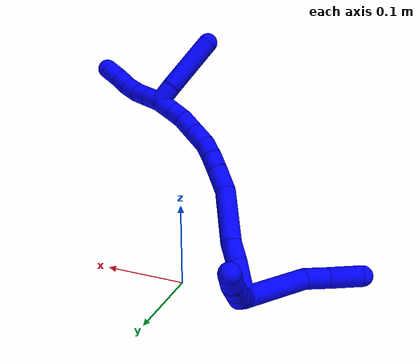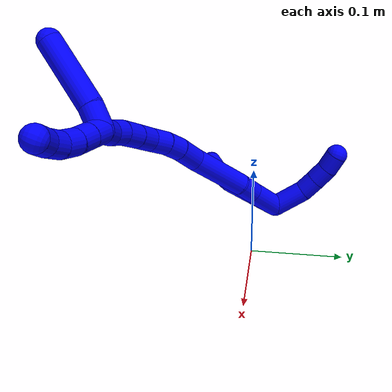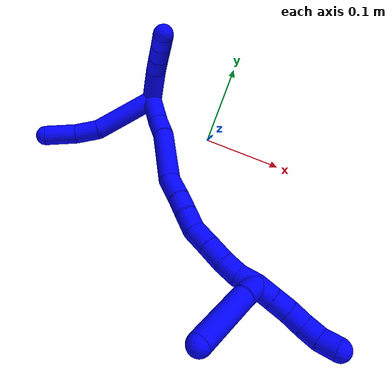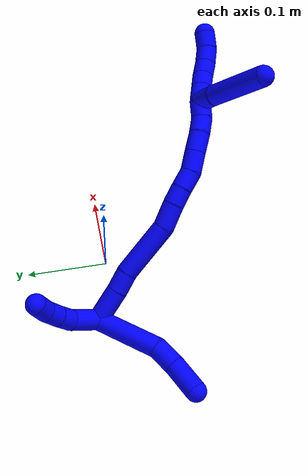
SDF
<sdf version="1.7">
 <world name="default">
  <plugin name="TubeGeneratorPlugin" filename="libtube_generator_plugin.so"/>
  <model name="photoneo_s_sensor">
   <static>1</static>
   <pose>0 0 2 1.57079 1.57079 3.14159</pose>
   <link name="link">
    <inertial><mass>0.1</mass></inertial>
    <sensor name="sensor" type="depth">
     <update_rate>30</update_rate>
     <camera>
      <horizontal_fov>1.22</horizontal_fov>
      <image><width>1920</width><height>1200</height><format>B8G8R8</format></image>
      <clip><near>0.1</near><far>4</far></clip>
      <depth_camera><output>points</output></depth_camera>
     </camera>
     <plugin name="camera_plugin" filename="libgazebo_ros_depth_camera.so">
      <baseline>0.2</baseline>
      <alwaysOn>1</alwaysOn>
      <updateRate>0.0</updateRate>
      <cameraName>camera_ir</cameraName>
      <imageTopicName>/camera/color/image_raw</imageTopicName>
      <cameraInfoTopicName>/camera/color/camera_info</cameraInfoTopicName>
      <depthImageTopicName>/camera/depth/image_raw</depthImageTopicName>
      <depthImageCameraInfoTopicName>/camera/depth/camera_info</depthImageCameraInfoTopicName>
      <pointCloudTopicName>/camera/depth/points</pointCloudTopicName>
      <frameName>fr_optical</frameName>
      <pointCloudCutoff>0.1</pointCloudCutoff>
      <pointCloudCutoffMax>2.0</pointCloudCutoffMax>
      <distortionK1>0</distortionK1>
      <distortionK2>0</distortionK2>
      <distortionK3>0</distortionK3>
      <distortionT1>0</distortionT1>
      <distortionT2>0</distortionT2>
      <CxPrime>0</CxPrime>
      <Cx>0</Cx>
      <Cy>0</Cy>
      <focalLength>0</focalLength>
      <hackBaseline>0</hackBaseline>
     </plugin>
    </sensor>
   </link>
  </model>
  <gravity>0 0 -9.8</gravity>
  <magnetic_field>6e-06 2.3e-05 -4.2e-05</magnetic_field>
  <atmosphere type="adiabatic"/>
  <physics name="default_physics" default="0" type="ode">
   <max_step_size>0.003</max_step_size>
   <real_time_factor>1</real_time_factor>
   <real_time_update_rate>1000</real_time_update_rate>
   <max_contacts>10000</max_contacts>
   <ode>
    <solver>
     <type>quick</type>
     <iters>100</iters>
     <sor>1.3</sor>
     <use_dynamic_moi_rescaling>0</use_dynamic_moi_rescaling>
    </solver>
    <constraints>
     <contact_max_correcting_vel>0</contact_max_correcting_vel>
     <contact_surface_layer>0.001</contact_surface_layer>
     <cfm>0</cfm>
     <erp>0.2</erp>
    </constraints>
   </ode>
  </physics>
  <scene><ambient>0.4 0.4 0.4 1</ambient><background>0.7 0.7 0.7 1</background><shadows>0</shadows></scene>
  <audio><device>default</device></audio>
  <spherical_coordinates>
   <surface_model>EARTH_WGS84</surface_model>
   <latitude_deg>0</latitude_deg>
   <longitude_deg>0</longitude_deg>
   <elevation>0</elevation>
   <heading_deg>0</heading_deg>
  </spherical_coordinates>
  <model name="bin">
   <static>1</static>
   <link name="bottom">
    <collision name="collision-bottom">
     <pose>0 0 -0.01 0 -0 0</pose>
     <geometry><box><size>0.8 0.6 0.02</size></box></geometry>
     <surface>
      <friction><ode><mu>100</mu><mu2>100</mu2></ode></friction>
      <contact><collide_bitmask>65535</collide_bitmask></contact>
     </surface>
    </collision>
   </link>
   <link name="west_wall">
    <collision name="collision-west_wall">
     <pose>-0.41 0 0.1 0 -0 0</pose>
     <geometry><box><size>0.02 0.6 0.2</size></box></geometry>
     <surface>
      <friction><ode><mu>100</mu><mu2>100</mu2></ode></friction>
      <contact><collide_bitmask>65535</collide_bitmask></contact>
     </surface>
    </collision>
   </link>
   <link name="east_wall">
    <collision name="collision-east_wall">
     <pose>0.41 0 0.1 0 -0 0</pose>
     <geometry><box><size>0.02 0.6 0.2</size></box></geometry>
     <surface>
      <friction><ode><mu>100</mu><mu2>100</mu2></ode></friction>
      <contact><collide_bitmask>65535</collide_bitmask></contact>
     </surface>
    </collision>
   </link>
   <link name="south_wall">
    <collision name="collision-south_wall">
     <pose>0 -0.31 0.1 0 -0 0</pose>
     <geometry><box><size>0.8 0.02 0.2</size></box></geometry>
     <surface>
      <friction><ode><mu>100</mu><mu2>100</mu2></ode></friction>
      <contact><collide_bitmask>65535</collide_bitmask></contact>
     </surface>
    </collision>
   </link>
   <link name="north_wall">
    <collision name="collision-north_wall">
     <pose>0 0.31 0.1 0 -0 0</pose>
     <geometry><box><size>0.8 0.02 0.2</size></box></geometry>
     <surface>
      <friction><ode><mu>100</mu><mu2>100</mu2></ode></friction>
      <contact><collide_bitmask>65535</collide_bitmask></contact>
     </surface>
    </collision>
   </link>
  </model>
  <model name="1">
   <static>0</static>
   <link name="1">
    <collision name="collision-cylinder-e_1_2_8">
     <pose>-0.026284 0.010567 0.0286 -0.353906 -0.711454 0.132682</pose>
     <geometry><cylinder><radius>0.0125</radius><length>0.080511</length></cylinder></geometry>
     <surface>
      <friction><ode><mu>1.16</mu><mu2>1.16</mu2><slip1>0</slip1><slip2>0</slip2></ode></friction>
      <contact><ode><kp>1e+06</kp><kd>1</kd><max_vel>0</max_vel><min_depth>0.001</min_depth></ode></contact>
     </surface>
    </collision>
    <visual name="visual-cylinder-e_1_2_8">
     <pose>-0.026284 0.010567 0.0286 -0.353906 -0.711454 0.132682</pose>
     <geometry><cylinder><radius>0.0125</radius><length>0.080511</length></cylinder></geometry>
     <material><ambient>0 0 1 1</ambient></material>
    </visual>
    <collision name="collision-cylinder-e_2_8_9">
     <pose>-0.064417 0.027257 0.063798 -0.748114 -0.921133 0.384703</pose>
     <geometry><cylinder><radius>0.0125</radius><length>0.02976</length></cylinder></geometry>
     <surface>
      <friction><ode><mu>1.16</mu><mu2>1.16</mu2><slip1>0</slip1><slip2>0</slip2></ode></friction>
      <contact><ode><kp>1e+06</kp><kd>1</kd><max_vel>0</max_vel><min_depth>0.001</min_depth></ode></contact>
     </surface>
    </collision>
    <visual name="visual-cylinder-e_2_8_9">
     <pose>-0.064417 0.027257 0.063798 -0.748114 -0.921133 0.384703</pose>
     <geometry><cylinder><radius>0.0125</radius><length>0.02976</length></cylinder></geometry>
     <material><ambient>0 0 1 1</ambient></material>
    </visual>
    <collision name="collision-cylinder-e_3_9_6">
     <pose>-0.091171 0.044217 0.077812 -0.970643 -0.848575 0.467754</pose>
     <geometry><cylinder><radius>0.0125</radius><length>0.039729</length></cylinder></geometry>
     <surface>
      <friction><ode><mu>1.16</mu><mu2>1.16</mu2><slip1>0</slip1><slip2>0</slip2></ode></friction>
      <contact><ode><kp>1e+06</kp><kd>1</kd><max_vel>0</max_vel><min_depth>0.001</min_depth></ode></contact>
     </surface>
    </collision>
    <visual name="visual-cylinder-e_3_9_6">
     <pose>-0.091171 0.044217 0.077812 -0.970643 -0.848575 0.467754</pose>
     <geometry><cylinder><radius>0.0125</radius><length>0.039729</length></cylinder></geometry>
     <material><ambient>0 0 1 1</ambient></material>
    </visual>
    <collision name="collision-cylinder-e_1_2_10">
     <pose>0.008087 0.013142 -0.011725 -2.29927 0.430437 -0.907987</pose>
     <geometry><cylinder><radius>0.0125</radius><length>0.03876</length></cylinder></geometry>
     <surface>
      <friction><ode><mu>1.16</mu><mu2>1.16</mu2><slip1>0</slip1><slip2>0</slip2></ode></friction>
      <contact><ode><kp>1e+06</kp><kd>1</kd><max_vel>0</max_vel><min_depth>0.001</min_depth></ode></contact>
     </surface>
    </collision>
    <visual name="visual-cylinder-e_1_2_10">
     <pose>0.008087 0.013142 -0.011725 -2.29927 0.430437 -0.907987</pose>
     <geometry><cylinder><radius>0.0125</radius><length>0.03876</length></cylinder></geometry>
     <material><ambient>0 0 1 1</ambient></material>
    </visual>
    <collision name="collision-cylinder-e_2_10_11">
     <pose>0.022269 0.033759 -0.027151 -2.03049 0.631142 -0.968355</pose>
     <geometry><cylinder><radius>0.0125</radius><length>0.020662</length></cylinder></geometry>
     <surface>
      <friction><ode><mu>1.16</mu><mu2>1.16</mu2><slip1>0</slip1><slip2>0</slip2></ode></friction>
      <contact><ode><kp>1e+06</kp><kd>1</kd><max_vel>0</max_vel><min_depth>0.001</min_depth></ode></contact>
     </surface>
    </collision>
    <visual name="visual-cylinder-e_2_10_11">
     <pose>0.022269 0.033759 -0.027151 -2.03049 0.631142 -0.968355</pose>
     <geometry><cylinder><radius>0.0125</radius><length>0.020662</length></cylinder></geometry>
     <material><ambient>0 0 1 1</ambient></material>
    </visual>
    <collision name="collision-cylinder-e_3_11_12">
     <pose>0.034587 0.048455 -0.03395 -1.97617 0.669689 -0.971515</pose>
     <geometry><cylinder><radius>0.0125</radius><length>0.020045</length></cylinder></geometry>
     <surface>
      <friction><ode><mu>1.16</mu><mu2>1.16</mu2><slip1>0</slip1><slip2>0</slip2></ode></friction>
      <contact><ode><kp>1e+06</kp><kd>1</kd><max_vel>0</max_vel><min_depth>0.001</min_depth></ode></contact>
     </surface>
    </collision>
    <visual name="visual-cylinder-e_3_11_12">
     <pose>0.034587 0.048455 -0.03395 -1.97617 0.669689 -0.971515</pose>
     <geometry><cylinder><radius>0.0125</radius><length>0.020045</length></cylinder></geometry>
     <material><ambient>0 0 1 1</ambient></material>
    </visual>
    <collision name="collision-cylinder-e_4_12_5">
     <pose>0.047532 0.063355 -0.038153 -1.71361 0.714139 -0.813106</pose>
     <geometry><cylinder><radius>0.0125</radius><length>0.020533</length></cylinder></geometry>
     <surface>
      <friction><ode><mu>1.16</mu><mu2>1.16</mu2><slip1>0</slip1><slip2>0</slip2></ode></friction>
      <contact><ode><kp>1e+06</kp><kd>1</kd><max_vel>0</max_vel><min_depth>0.001</min_depth></ode></contact>
     </surface>
    </collision>
    <visual name="visual-cylinder-e_4_12_5">
     <pose>0.047532 0.063355 -0.038153 -1.71361 0.714139 -0.813106</pose>
     <geometry><cylinder><radius>0.0125</radius><length>0.020533</length></cylinder></geometry>
     <material><ambient>0 0 1 1</ambient></material>
    </visual>
    <collision name="collision-cylinder-e_1_2_13">
     <pose>0.012142 -0.000784 0.017836 0.043911 0.597242 0.013519</pose>
     <geometry><cylinder><radius>0.0125</radius><length>0.043181</length></cylinder></geometry>
     <surface>
      <friction><ode><mu>1.16</mu><mu2>1.16</mu2><slip1>0</slip1><slip2>0</slip2></ode></friction>
      <contact><ode><kp>1e+06</kp><kd>1</kd><max_vel>0</max_vel><min_depth>0.001</min_depth></ode></contact>
     </surface>
    </collision>
    <visual name="visual-cylinder-e_1_2_13">
     <pose>0.012142 -0.000784 0.017836 0.043911 0.597242 0.013519</pose>
     <geometry><cylinder><radius>0.0125</radius><length>0.043181</length></cylinder></geometry>
     <material><ambient>0 0 1 1</ambient></material>
    </visual>
    <collision name="collision-cylinder-e_2_13_14">
     <pose>0.032023 -0.002091 0.045322 0.054194 0.675235 0.019029</pose>
     <geometry><cylinder><radius>0.0125</radius><length>0.024762</length></cylinder></geometry>
     <surface>
      <friction><ode><mu>1.16</mu><mu2>1.16</mu2><slip1>0</slip1><slip2>0</slip2></ode></friction>
      <contact><ode><kp>1e+06</kp><kd>1</kd><max_vel>0</max_vel><min_depth>0.001</min_depth></ode></contact>
     </surface>
    </collision>
    <visual name="visual-cylinder-e_2_13_14">
     <pose>0.032023 -0.002091 0.045322 0.054194 0.675235 0.019029</pose>
     <geometry><cylinder><radius>0.0125</radius><length>0.024762</length></cylinder></geometry>
     <material><ambient>0 0 1 1</ambient></material>
    </visual>
    <collision name="collision-cylinder-e_3_14_15">
     <pose>0.056052 -0.003645 0.085556 0.033701 0.489176 0.008412</pose>
     <geometry><cylinder><radius>0.0125</radius><length>0.069335</length></cylinder></geometry>
     <surface>
      <friction><ode><mu>1.16</mu><mu2>1.16</mu2><slip1>0</slip1><slip2>0</slip2></ode></friction>
      <contact><ode><kp>1e+06</kp><kd>1</kd><max_vel>0</max_vel><min_depth>0.001</min_depth></ode></contact>
     </surface>
    </collision>
    <visual name="visual-cylinder-e_3_14_15">
     <pose>0.056052 -0.003645 0.085556 0.033701 0.489176 0.008412</pose>
     <geometry><cylinder><radius>0.0125</radius><length>0.069335</length></cylinder></geometry>
     <material><ambient>0 0 1 1</ambient></material>
    </visual>
    <collision name="collision-cylinder-e_4_15_16">
     <pose>0.082667 -0.00563 0.126854 0.08877 0.76493 0.03573</pose>
     <geometry><cylinder><radius>0.0125</radius><length>0.02982</length></cylinder></geometry>
     <surface>
      <friction><ode><mu>1.16</mu><mu2>1.16</mu2><slip1>0</slip1><slip2>0</slip2></ode></friction>
      <contact><ode><kp>1e+06</kp><kd>1</kd><max_vel>0</max_vel><min_depth>0.001</min_depth></ode></contact>
     </surface>
    </collision>
    <visual name="visual-cylinder-e_4_15_16">
     <pose>0.082667 -0.00563 0.126854 0.08877 0.76493 0.03573</pose>
     <geometry><cylinder><radius>0.0125</radius><length>0.02982</length></cylinder></geometry>
     <material><ambient>0 0 1 1</ambient></material>
    </visual>
    <collision name="collision-cylinder-e_5_16_17">
     <pose>0.099515 -0.008338 0.145347 0.221827 0.685602 0.079453</pose>
     <geometry><cylinder><radius>0.0125</radius><length>0.020604</length></cylinder></geometry>
     <surface>
      <friction><ode><mu>1.16</mu><mu2>1.16</mu2><slip1>0</slip1><slip2>0</slip2></ode></friction>
      <contact><ode><kp>1e+06</kp><kd>1</kd><max_vel>0</max_vel><min_depth>0.001</min_depth></ode></contact>
     </surface>
    </collision>
    <visual name="visual-cylinder-e_5_16_17">
     <pose>0.099515 -0.008338 0.145347 0.221827 0.685602 0.079453</pose>
     <geometry><cylinder><radius>0.0125</radius><length>0.020604</length></cylinder></geometry>
     <material><ambient>0 0 1 1</ambient></material>
    </visual>
    <collision name="collision-cylinder-e_6_17_18">
     <pose>0.112524 -0.013427 0.16151 0.37852 0.623304 0.123261</pose>
     <geometry><cylinder><radius>0.0125</radius><length>0.022226</length></cylinder></geometry>
     <surface>
      <friction><ode><mu>1.16</mu><mu2>1.16</mu2><slip1>0</slip1><slip2>0</slip2></ode></friction>
      <contact><ode><kp>1e+06</kp><kd>1</kd><max_vel>0</max_vel><min_depth>0.001</min_depth></ode></contact>
     </surface>
    </collision>
    <visual name="visual-cylinder-e_6_17_18">
     <pose>0.112524 -0.013427 0.16151 0.37852 0.623304 0.123261</pose>
     <geometry><cylinder><radius>0.0125</radius><length>0.022226</length></cylinder></geometry>
     <material><ambient>0 0 1 1</ambient></material>
    </visual>
    <collision name="collision-cylinder-e_7_18_19">
     <pose>0.12864 -0.020579 0.176475 0.525689 0.902154 0.259205</pose>
     <geometry><cylinder><radius>0.0125</radius><length>0.024544</length></cylinder></geometry>
     <surface>
      <friction><ode><mu>1.16</mu><mu2>1.16</mu2><slip1>0</slip1><slip2>0</slip2></ode></friction>
      <contact><ode><kp>1e+06</kp><kd>1</kd><max_vel>0</max_vel><min_depth>0.001</min_depth></ode></contact>
     </surface>
    </collision>
    <visual name="visual-cylinder-e_7_18_19">
     <pose>0.12864 -0.020579 0.176475 0.525689 0.902154 0.259205</pose>
     <geometry><cylinder><radius>0.0125</radius><length>0.024544</length></cylinder></geometry>
     <material><ambient>0 0 1 1</ambient></material>
    </visual>
    <collision name="collision-cylinder-e_8_19_20">
     <pose>0.147549 -0.028271 0.189693 0.52833 0.879106 0.253025</pose>
     <geometry><cylinder><radius>0.0125</radius><length>0.024099</length></cylinder></geometry>
     <surface>
      <friction><ode><mu>1.16</mu><mu2>1.16</mu2><slip1>0</slip1><slip2>0</slip2></ode></friction>
      <contact><ode><kp>1e+06</kp><kd>1</kd><max_vel>0</max_vel><min_depth>0.001</min_depth></ode></contact>
     </surface>
    </collision>
    <visual name="visual-cylinder-e_8_19_20">
     <pose>0.147549 -0.028271 0.189693 0.52833 0.879106 0.253025</pose>
     <geometry><cylinder><radius>0.0125</radius><length>0.024099</length></cylinder></geometry>
     <material><ambient>0 0 1 1</ambient></material>
    </visual>
    <collision name="collision-cylinder-e_9_20_21">
     <pose>0.164598 -0.036762 0.20089 0.791713 0.874938 0.386046</pose>
     <geometry><cylinder><radius>0.0125</radius><length>0.020244</length></cylinder></geometry>
     <surface>
      <friction><ode><mu>1.16</mu><mu2>1.16</mu2><slip1>0</slip1><slip2>0</slip2></ode></friction>
      <contact><ode><kp>1e+06</kp><kd>1</kd><max_vel>0</max_vel><min_depth>0.001</min_depth></ode></contact>
     </surface>
    </collision>
    <visual name="visual-cylinder-e_9_20_21">
     <pose>0.164598 -0.036762 0.20089 0.791713 0.874938 0.386046</pose>
     <geometry><cylinder><radius>0.0125</radius><length>0.020244</length></cylinder></geometry>
     <material><ambient>0 0 1 1</ambient></material>
    </visual>
    <collision name="collision-cylinder-e_10_21_1">
     <pose>0.182061 -0.044579 0.208274 0.847466 1.15598 0.572302</pose>
     <geometry><cylinder><radius>0.0125</radius><length>0.021186</length></cylinder></geometry>
     <surface>
      <friction><ode><mu>1.16</mu><mu2>1.16</mu2><slip1>0</slip1><slip2>0</slip2></ode></friction>
      <contact><ode><kp>1e+06</kp><kd>1</kd><max_vel>0</max_vel><min_depth>0.001</min_depth></ode></contact>
     </surface>
    </collision>
    <visual name="visual-cylinder-e_10_21_1">
     <pose>0.182061 -0.044579 0.208274 0.847466 1.15598 0.572302</pose>
     <geometry><cylinder><radius>0.0125</radius><length>0.021186</length></cylinder></geometry>
     <material><ambient>0 0 1 1</ambient></material>
    </visual>
    <collision name="collision-cylinder-e_1_1_22">
     <pose>0.198653 -0.054155 0.214534 1.07678 0.761013 0.469003</pose>
     <geometry><cylinder><radius>0.0125</radius><length>0.02</length></cylinder></geometry>
     <surface>
      <friction><ode><mu>1.16</mu><mu2>1.16</mu2><slip1>0</slip1><slip2>0</slip2></ode></friction>
      <contact><ode><kp>1e+06</kp><kd>1</kd><max_vel>0</max_vel><min_depth>0.001</min_depth></ode></contact>
     </surface>
    </collision>
    <visual name="visual-cylinder-e_1_1_22">
     <pose>0.198653 -0.054155 0.214534 1.07678 0.761013 0.469003</pose>
     <geometry><cylinder><radius>0.0125</radius><length>0.02</length></cylinder></geometry>
     <material><ambient>0 0 1 1</ambient></material>
    </visual>
    <collision name="collision-cylinder-e_2_22_23">
     <pose>0.21239 -0.066959 0.221415 1.0785 0.753355 0.464865</pose>
     <geometry><cylinder><radius>0.0125</radius><length>0.02</length></cylinder></geometry>
     <surface>
      <friction><ode><mu>1.16</mu><mu2>1.16</mu2><slip1>0</slip1><slip2>0</slip2></ode></friction>
      <contact><ode><kp>1e+06</kp><kd>1</kd><max_vel>0</max_vel><min_depth>0.001</min_depth></ode></contact>
     </surface>
    </collision>
    <visual name="visual-cylinder-e_2_22_23">
     <pose>0.21239 -0.066959 0.221415 1.0785 0.753355 0.464865</pose>
     <geometry><cylinder><radius>0.0125</radius><length>0.02</length></cylinder></geometry>
     <material><ambient>0 0 1 1</ambient></material>
    </visual>
    <collision name="collision-cylinder-e_3_23_24">
     <pose>0.22629 -0.078901 0.229308 0.892324 0.783733 0.390298</pose>
     <geometry><cylinder><radius>0.0125</radius><length>0.02</length></cylinder></geometry>
     <surface>
      <friction><ode><mu>1.16</mu><mu2>1.16</mu2><slip1>0</slip1><slip2>0</slip2></ode></friction>
      <contact><ode><kp>1e+06</kp><kd>1</kd><max_vel>0</max_vel><min_depth>0.001</min_depth></ode></contact>
     </surface>
    </collision>
    <visual name="visual-cylinder-e_3_23_24">
     <pose>0.22629 -0.078901 0.229308 0.892324 0.783733 0.390298</pose>
     <geometry><cylinder><radius>0.0125</radius><length>0.02</length></cylinder></geometry>
     <material><ambient>0 0 1 1</ambient></material>
    </visual>
    <collision name="collision-cylinder-e_4_24_25">
     <pose>0.24171 -0.087707 0.238143 0.643513 0.989945 0.356059</pose>
     <geometry><cylinder><radius>0.0125</radius><length>0.02</length></cylinder></geometry>
     <surface>
      <friction><ode><mu>1.16</mu><mu2>1.16</mu2><slip1>0</slip1><slip2>0</slip2></ode></friction>
      <contact><ode><kp>1e+06</kp><kd>1</kd><max_vel>0</max_vel><min_depth>0.001</min_depth></ode></contact>
     </surface>
    </collision>
    <visual name="visual-cylinder-e_4_24_25">
     <pose>0.24171 -0.087707 0.238143 0.643513 0.989945 0.356059</pose>
     <geometry><cylinder><radius>0.0125</radius><length>0.02</length></cylinder></geometry>
     <material><ambient>0 0 1 1</ambient></material>
    </visual>
    <collision name="collision-cylinder-e_5_25_4">
     <pose>0.259506 -0.093209 0.244998 0.730742 1.23336 0.529646</pose>
     <geometry><cylinder><radius>0.0125</radius><length>0.02</length></cylinder></geometry>
     <surface>
      <friction><ode><mu>1.16</mu><mu2>1.16</mu2><slip1>0</slip1><slip2>0</slip2></ode></friction>
      <contact><ode><kp>1e+06</kp><kd>1</kd><max_vel>0</max_vel><min_depth>0.001</min_depth></ode></contact>
     </surface>
    </collision>
    <visual name="visual-cylinder-e_5_25_4">
     <pose>0.259506 -0.093209 0.244998 0.730742 1.23336 0.529646</pose>
     <geometry><cylinder><radius>0.0125</radius><length>0.02</length></cylinder></geometry>
     <material><ambient>0 0 1 1</ambient></material>
    </visual>
    <collision name="collision-cylinder-e_1_1_26">
     <pose>0.191635 -0.038797 0.219997 -0.790152 -0.009568 0.00399</pose>
     <geometry><cylinder><radius>0.0125</radius><length>0.025287</length></cylinder></geometry>
     <surface>
      <friction><ode><mu>1.16</mu><mu2>1.16</mu2><slip1>0</slip1><slip2>0</slip2></ode></friction>
      <contact><ode><kp>1e+06</kp><kd>1</kd><max_vel>0</max_vel><min_depth>0.001</min_depth></ode></contact>
     </surface>
    </collision>
    <visual name="visual-cylinder-e_1_1_26">
     <pose>0.191635 -0.038797 0.219997 -0.790152 -0.009568 0.00399</pose>
     <geometry><cylinder><radius>0.0125</radius><length>0.025287</length></cylinder></geometry>
     <material><ambient>0 0 1 1</ambient></material>
    </visual>
    <collision name="collision-cylinder-e_2_26_3">
     <pose>0.189591 -0.007393 0.258712 -0.644765 -0.051497 0.017205</pose>
     <geometry><cylinder><radius>0.0125</radius><length>0.074713</length></cylinder></geometry>
     <surface>
      <friction><ode><mu>1.16</mu><mu2>1.16</mu2><slip1>0</slip1><slip2>0</slip2></ode></friction>
      <contact><ode><kp>1e+06</kp><kd>1</kd><max_vel>0</max_vel><min_depth>0.001</min_depth></ode></contact>
     </surface>
    </collision>
    <visual name="visual-cylinder-e_2_26_3">
     <pose>0.189591 -0.007393 0.258712 -0.644765 -0.051497 0.017205</pose>
     <geometry><cylinder><radius>0.0125</radius><length>0.074713</length></cylinder></geometry>
     <material><ambient>0 0 1 1</ambient></material>
    </visual>
    <collision name="collision-sphere-3">
     <pose>0.187668 0.015029 0.288529 0 -0 0</pose>
     <geometry><sphere><radius>0.0125</radius></sphere></geometry>
     <surface>
      <friction><ode><mu>1.16</mu><mu2>1.16</mu2><slip1>0</slip1><slip2>0</slip2></ode></friction>
      <contact><ode><kp>1e+06</kp><kd>1</kd><max_vel>0</max_vel><min_depth>0.001</min_depth></ode></contact>
     </surface>
    </collision>
    <visual name="visual-sphere-3">
     <pose>0.187668 0.015029 0.288529 0 -0 0</pose>
     <geometry><sphere><radius>0.0125</radius></sphere></geometry>
     <material><ambient>0 0 1 1</ambient></material>
    </visual>
    <collision name="collision-sphere-26">
     <pose>0.191514 -0.029815 0.228895 0 -0 0</pose>
     <geometry><sphere><radius>0.0125</radius></sphere></geometry>
     <surface>
      <friction><ode><mu>1.16</mu><mu2>1.16</mu2><slip1>0</slip1><slip2>0</slip2></ode></friction>
      <contact><ode><kp>1e+06</kp><kd>1</kd><max_vel>0</max_vel><min_depth>0.001</min_depth></ode></contact>
     </surface>
    </collision>
    <visual name="visual-sphere-26">
     <pose>0.191514 -0.029815 0.228895 0 -0 0</pose>
     <geometry><sphere><radius>0.0125</radius></sphere></geometry>
     <material><ambient>0 0 1 1</ambient></material>
    </visual>
    <collision name="collision-sphere-4">
     <pose>0.268942 -0.095419 0.247463 0 -0 0</pose>
     <geometry><sphere><radius>0.0125</radius></sphere></geometry>
     <surface>
      <friction><ode><mu>1.16</mu><mu2>1.16</mu2><slip1>0</slip1><slip2>0</slip2></ode></friction>
      <contact><ode><kp>1e+06</kp><kd>1</kd><max_vel>0</max_vel><min_depth>0.001</min_depth></ode></contact>
     </surface>
    </collision>
    <visual name="visual-sphere-4">
     <pose>0.268942 -0.095419 0.247463 0 -0 0</pose>
     <geometry><sphere><radius>0.0125</radius></sphere></geometry>
     <material><ambient>0 0 1 1</ambient></material>
    </visual>
    <collision name="collision-sphere-25">
     <pose>0.25007 -0.091 0.242532 0 -0 0</pose>
     <geometry><sphere><radius>0.0125</radius></sphere></geometry>
     <surface>
      <friction><ode><mu>1.16</mu><mu2>1.16</mu2><slip1>0</slip1><slip2>0</slip2></ode></friction>
      <contact><ode><kp>1e+06</kp><kd>1</kd><max_vel>0</max_vel><min_depth>0.001</min_depth></ode></contact>
     </surface>
    </collision>
    <visual name="visual-sphere-25">
     <pose>0.25007 -0.091 0.242532 0 -0 0</pose>
     <geometry><sphere><radius>0.0125</radius></sphere></geometry>
     <material><ambient>0 0 1 1</ambient></material>
    </visual>
    <collision name="collision-sphere-24">
     <pose>0.23335 -0.084415 0.233753 0 -0 0</pose>
     <geometry><sphere><radius>0.0125</radius></sphere></geometry>
     <surface>
      <friction><ode><mu>1.16</mu><mu2>1.16</mu2><slip1>0</slip1><slip2>0</slip2></ode></friction>
      <contact><ode><kp>1e+06</kp><kd>1</kd><max_vel>0</max_vel><min_depth>0.001</min_depth></ode></contact>
     </surface>
    </collision>
    <visual name="visual-sphere-24">
     <pose>0.23335 -0.084415 0.233753 0 -0 0</pose>
     <geometry><sphere><radius>0.0125</radius></sphere></geometry>
     <material><ambient>0 0 1 1</ambient></material>
    </visual>
    <collision name="collision-sphere-23">
     <pose>0.219231 -0.073386 0.224862 0 -0 0</pose>
     <geometry><sphere><radius>0.0125</radius></sphere></geometry>
     <surface>
      <friction><ode><mu>1.16</mu><mu2>1.16</mu2><slip1>0</slip1><slip2>0</slip2></ode></friction>
      <contact><ode><kp>1e+06</kp><kd>1</kd><max_vel>0</max_vel><min_depth>0.001</min_depth></ode></contact>
     </surface>
    </collision>
    <visual name="visual-sphere-23">
     <pose>0.219231 -0.073386 0.224862 0 -0 0</pose>
     <geometry><sphere><radius>0.0125</radius></sphere></geometry>
     <material><ambient>0 0 1 1</ambient></material>
    </visual>
    <collision name="collision-sphere-22">
     <pose>0.205549 -0.060531 0.217967 0 -0 0</pose>
     <geometry><sphere><radius>0.0125</radius></sphere></geometry>
     <surface>
      <friction><ode><mu>1.16</mu><mu2>1.16</mu2><slip1>0</slip1><slip2>0</slip2></ode></friction>
      <contact><ode><kp>1e+06</kp><kd>1</kd><max_vel>0</max_vel><min_depth>0.001</min_depth></ode></contact>
     </surface>
    </collision>
    <visual name="visual-sphere-22">
     <pose>0.205549 -0.060531 0.217967 0 -0 0</pose>
     <geometry><sphere><radius>0.0125</radius></sphere></geometry>
     <material><ambient>0 0 1 1</ambient></material>
    </visual>
    <collision name="collision-sphere-1">
     <pose>0.191756 -0.04778 0.2111 0 -0 0</pose>
     <geometry><sphere><radius>0.0125</radius></sphere></geometry>
     <surface>
      <friction><ode><mu>1.16</mu><mu2>1.16</mu2><slip1>0</slip1><slip2>0</slip2></ode></friction>
      <contact><ode><kp>1e+06</kp><kd>1</kd><max_vel>0</max_vel><min_depth>0.001</min_depth></ode></contact>
     </surface>
    </collision>
    <visual name="visual-sphere-1">
     <pose>0.191756 -0.04778 0.2111 0 -0 0</pose>
     <geometry><sphere><radius>0.0125</radius></sphere></geometry>
     <material><ambient>0 0 1 1</ambient></material>
    </visual>
    <collision name="collision-sphere-21">
     <pose>0.172367 -0.041379 0.205449 0 -0 0</pose>
     <geometry><sphere><radius>0.0125</radius></sphere></geometry>
     <surface>
      <friction><ode><mu>1.16</mu><mu2>1.16</mu2><slip1>0</slip1><slip2>0</slip2></ode></friction>
      <contact><ode><kp>1e+06</kp><kd>1</kd><max_vel>0</max_vel><min_depth>0.001</min_depth></ode></contact>
     </surface>
    </collision>
    <visual name="visual-sphere-21">
     <pose>0.172367 -0.041379 0.205449 0 -0 0</pose>
     <geometry><sphere><radius>0.0125</radius></sphere></geometry>
     <material><ambient>0 0 1 1</ambient></material>
    </visual>
    <collision name="collision-sphere-11">
     <pose>0.028365 0.041234 -0.030851 0 -0 0</pose>
     <geometry><sphere><radius>0.0125</radius></sphere></geometry>
     <surface>
      <friction><ode><mu>1.16</mu><mu2>1.16</mu2><slip1>0</slip1><slip2>0</slip2></ode></friction>
      <contact><ode><kp>1e+06</kp><kd>1</kd><max_vel>0</max_vel><min_depth>0.001</min_depth></ode></contact>
     </surface>
    </collision>
    <visual name="visual-sphere-11">
     <pose>0.028365 0.041234 -0.030851 0 -0 0</pose>
     <geometry><sphere><radius>0.0125</radius></sphere></geometry>
     <material><ambient>0 0 1 1</ambient></material>
    </visual>
    <collision name="collision-sphere-10">
     <pose>0.016173 0.026284 -0.02345 0 -0 0</pose>
     <geometry><sphere><radius>0.0125</radius></sphere></geometry>
     <surface>
      <friction><ode><mu>1.16</mu><mu2>1.16</mu2><slip1>0</slip1><slip2>0</slip2></ode></friction>
      <contact><ode><kp>1e+06</kp><kd>1</kd><max_vel>0</max_vel><min_depth>0.001</min_depth></ode></contact>
     </surface>
    </collision>
    <visual name="visual-sphere-10">
     <pose>0.016173 0.026284 -0.02345 0 -0 0</pose>
     <geometry><sphere><radius>0.0125</radius></sphere></geometry>
     <material><ambient>0 0 1 1</ambient></material>
    </visual>
    <collision name="collision-sphere-6">
     <pose>-0.106076 0.055053 0.085229 0 -0 0</pose>
     <geometry><sphere><radius>0.0125</radius></sphere></geometry>
     <surface>
      <friction><ode><mu>1.16</mu><mu2>1.16</mu2><slip1>0</slip1><slip2>0</slip2></ode></friction>
      <contact><ode><kp>1e+06</kp><kd>1</kd><max_vel>0</max_vel><min_depth>0.001</min_depth></ode></contact>
     </surface>
    </collision>
    <visual name="visual-sphere-6">
     <pose>-0.106076 0.055053 0.085229 0 -0 0</pose>
     <geometry><sphere><radius>0.0125</radius></sphere></geometry>
     <material><ambient>0 0 1 1</ambient></material>
    </visual>
    <collision name="collision-sphere-9">
     <pose>-0.076266 0.03338 0.070396 0 -0 0</pose>
     <geometry><sphere><radius>0.0125</radius></sphere></geometry>
     <surface>
      <friction><ode><mu>1.16</mu><mu2>1.16</mu2><slip1>0</slip1><slip2>0</slip2></ode></friction>
      <contact><ode><kp>1e+06</kp><kd>1</kd><max_vel>0</max_vel><min_depth>0.001</min_depth></ode></contact>
     </surface>
    </collision>
    <visual name="visual-sphere-9">
     <pose>-0.076266 0.03338 0.070396 0 -0 0</pose>
     <geometry><sphere><radius>0.0125</radius></sphere></geometry>
     <material><ambient>0 0 1 1</ambient></material>
    </visual>
    <collision name="collision-sphere-2">
     <geometry><sphere><radius>0.0125</radius></sphere></geometry>
     <surface>
      <friction><ode><mu>1.16</mu><mu2>1.16</mu2><slip1>0</slip1><slip2>0</slip2></ode></friction>
      <contact><ode><kp>1e+06</kp><kd>1</kd><max_vel>0</max_vel><min_depth>0.001</min_depth></ode></contact>
     </surface>
    </collision>
    <visual name="visual-sphere-2">
     <geometry><sphere><radius>0.0125</radius></sphere></geometry>
     <material><ambient>0 0 1 1</ambient></material>
    </visual>
    <collision name="collision-sphere-19">
     <pose>0.138269 -0.024397 0.183055 0 -0 0</pose>
     <geometry><sphere><radius>0.0125</radius></sphere></geometry>
     <surface>
      <friction><ode><mu>1.16</mu><mu2>1.16</mu2><slip1>0</slip1><slip2>0</slip2></ode></friction>
      <contact><ode><kp>1e+06</kp><kd>1</kd><max_vel>0</max_vel><min_depth>0.001</min_depth></ode></contact>
     </surface>
    </collision>
    <visual name="visual-sphere-19">
     <pose>0.138269 -0.024397 0.183055 0 -0 0</pose>
     <geometry><sphere><radius>0.0125</radius></sphere></geometry>
     <material><ambient>0 0 1 1</ambient></material>
    </visual>
    <collision name="collision-sphere-8">
     <pose>-0.052568 0.021133 0.057201 0 -0 0</pose>
     <geometry><sphere><radius>0.0125</radius></sphere></geometry>
     <surface>
      <friction><ode><mu>1.16</mu><mu2>1.16</mu2><slip1>0</slip1><slip2>0</slip2></ode></friction>
      <contact><ode><kp>1e+06</kp><kd>1</kd><max_vel>0</max_vel><min_depth>0.001</min_depth></ode></contact>
     </surface>
    </collision>
    <visual name="visual-sphere-8">
     <pose>-0.052568 0.021133 0.057201 0 -0 0</pose>
     <geometry><sphere><radius>0.0125</radius></sphere></geometry>
     <material><ambient>0 0 1 1</ambient></material>
    </visual>
    <collision name="collision-sphere-12">
     <pose>0.040808 0.055676 -0.037049 0 -0 0</pose>
     <geometry><sphere><radius>0.0125</radius></sphere></geometry>
     <surface>
      <friction><ode><mu>1.16</mu><mu2>1.16</mu2><slip1>0</slip1><slip2>0</slip2></ode></friction>
      <contact><ode><kp>1e+06</kp><kd>1</kd><max_vel>0</max_vel><min_depth>0.001</min_depth></ode></contact>
     </surface>
    </collision>
    <visual name="visual-sphere-12">
     <pose>0.040808 0.055676 -0.037049 0 -0 0</pose>
     <geometry><sphere><radius>0.0125</radius></sphere></geometry>
     <material><ambient>0 0 1 1</ambient></material>
    </visual>
    <collision name="collision-sphere-5">
     <pose>0.054256 0.071034 -0.039257 0 -0 0</pose>
     <geometry><sphere><radius>0.0125</radius></sphere></geometry>
     <surface>
      <friction><ode><mu>1.16</mu><mu2>1.16</mu2><slip1>0</slip1><slip2>0</slip2></ode></friction>
      <contact><ode><kp>1e+06</kp><kd>1</kd><max_vel>0</max_vel><min_depth>0.001</min_depth></ode></contact>
     </surface>
    </collision>
    <visual name="visual-sphere-5">
     <pose>0.054256 0.071034 -0.039257 0 -0 0</pose>
     <geometry><sphere><radius>0.0125</radius></sphere></geometry>
     <material><ambient>0 0 1 1</ambient></material>
    </visual>
    <collision name="collision-sphere-13">
     <pose>0.024284 -0.001567 0.035672 0 -0 0</pose>
     <geometry><sphere><radius>0.0125</radius></sphere></geometry>
     <surface>
      <friction><ode><mu>1.16</mu><mu2>1.16</mu2><slip1>0</slip1><slip2>0</slip2></ode></friction>
      <contact><ode><kp>1e+06</kp><kd>1</kd><max_vel>0</max_vel><min_depth>0.001</min_depth></ode></contact>
     </surface>
    </collision>
    <visual name="visual-sphere-13">
     <pose>0.024284 -0.001567 0.035672 0 -0 0</pose>
     <geometry><sphere><radius>0.0125</radius></sphere></geometry>
     <material><ambient>0 0 1 1</ambient></material>
    </visual>
    <collision name="collision-sphere-14">
     <pose>0.039762 -0.002614 0.054972 0 -0 0</pose>
     <geometry><sphere><radius>0.0125</radius></sphere></geometry>
     <surface>
      <friction><ode><mu>1.16</mu><mu2>1.16</mu2><slip1>0</slip1><slip2>0</slip2></ode></friction>
      <contact><ode><kp>1e+06</kp><kd>1</kd><max_vel>0</max_vel><min_depth>0.001</min_depth></ode></contact>
     </surface>
    </collision>
    <visual name="visual-sphere-14">
     <pose>0.039762 -0.002614 0.054972 0 -0 0</pose>
     <geometry><sphere><radius>0.0125</radius></sphere></geometry>
     <material><ambient>0 0 1 1</ambient></material>
    </visual>
    <collision name="collision-sphere-15">
     <pose>0.072342 -0.004677 0.11614 0 -0 0</pose>
     <geometry><sphere><radius>0.0125</radius></sphere></geometry>
     <surface>
      <friction><ode><mu>1.16</mu><mu2>1.16</mu2><slip1>0</slip1><slip2>0</slip2></ode></friction>
      <contact><ode><kp>1e+06</kp><kd>1</kd><max_vel>0</max_vel><min_depth>0.001</min_depth></ode></contact>
     </surface>
    </collision>
    <visual name="visual-sphere-15">
     <pose>0.072342 -0.004677 0.11614 0 -0 0</pose>
     <geometry><sphere><radius>0.0125</radius></sphere></geometry>
     <material><ambient>0 0 1 1</ambient></material>
    </visual>
    <collision name="collision-sphere-16">
     <pose>0.092992 -0.006584 0.137568 0 -0 0</pose>
     <geometry><sphere><radius>0.0125</radius></sphere></geometry>
     <surface>
      <friction><ode><mu>1.16</mu><mu2>1.16</mu2><slip1>0</slip1><slip2>0</slip2></ode></friction>
      <contact><ode><kp>1e+06</kp><kd>1</kd><max_vel>0</max_vel><min_depth>0.001</min_depth></ode></contact>
     </surface>
    </collision>
    <visual name="visual-sphere-16">
     <pose>0.092992 -0.006584 0.137568 0 -0 0</pose>
     <geometry><sphere><radius>0.0125</radius></sphere></geometry>
     <material><ambient>0 0 1 1</ambient></material>
    </visual>
    <collision name="collision-sphere-17">
     <pose>0.106037 -0.010093 0.153126 0 -0 0</pose>
     <geometry><sphere><radius>0.0125</radius></sphere></geometry>
     <surface>
      <friction><ode><mu>1.16</mu><mu2>1.16</mu2><slip1>0</slip1><slip2>0</slip2></ode></friction>
      <contact><ode><kp>1e+06</kp><kd>1</kd><max_vel>0</max_vel><min_depth>0.001</min_depth></ode></contact>
     </surface>
    </collision>
    <visual name="visual-sphere-17">
     <pose>0.106037 -0.010093 0.153126 0 -0 0</pose>
     <geometry><sphere><radius>0.0125</radius></sphere></geometry>
     <material><ambient>0 0 1 1</ambient></material>
    </visual>
    <collision name="collision-sphere-18">
     <pose>0.119011 -0.016761 0.169894 0 -0 0</pose>
     <geometry><sphere><radius>0.0125</radius></sphere></geometry>
     <surface>
      <friction><ode><mu>1.16</mu><mu2>1.16</mu2><slip1>0</slip1><slip2>0</slip2></ode></friction>
      <contact><ode><kp>1e+06</kp><kd>1</kd><max_vel>0</max_vel><min_depth>0.001</min_depth></ode></contact>
     </surface>
    </collision>
    <visual name="visual-sphere-18">
     <pose>0.119011 -0.016761 0.169894 0 -0 0</pose>
     <geometry><sphere><radius>0.0125</radius></sphere></geometry>
     <material><ambient>0 0 1 1</ambient></material>
    </visual>
    <collision name="collision-sphere-20">
     <pose>0.156829 -0.032145 0.19633 0 -0 0</pose>
     <geometry><sphere><radius>0.0125</radius></sphere></geometry>
     <surface>
      <friction><ode><mu>1.16</mu><mu2>1.16</mu2><slip1>0</slip1><slip2>0</slip2></ode></friction>
      <contact><ode><kp>1e+06</kp><kd>1</kd><max_vel>0</max_vel><min_depth>0.001</min_depth></ode></contact>
     </surface>
    </collision>
    <visual name="visual-sphere-20">
     <pose>0.156829 -0.032145 0.19633 0 -0 0</pose>
     <geometry><sphere><radius>0.0125</radius></sphere></geometry>
     <material><ambient>0 0 1 1</ambient></material>
    </visual>
    <inertial>
     <pose>0.083589 -0.008141 0.117663 0 -0 0</pose>
     <mass>0.75</mass>
     <inertia>
      <ixx>0.000157</ixx>
      <ixy>0</ixy>
      <ixz>0</ixz>
      <iyy>0.000157</iyy>
      <iyz>0</iyz>
      <izz>-1.4e-05</izz>
     </inertia>
    </inertial>
   </link>
   <pose>-0.087145 0.022667 0.011493 1.07932 -0.677413 0.352652</pose>
  </model>
 </world>
</sdf>
